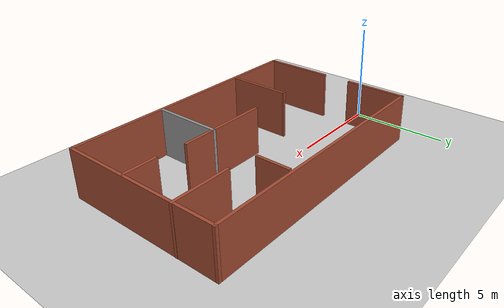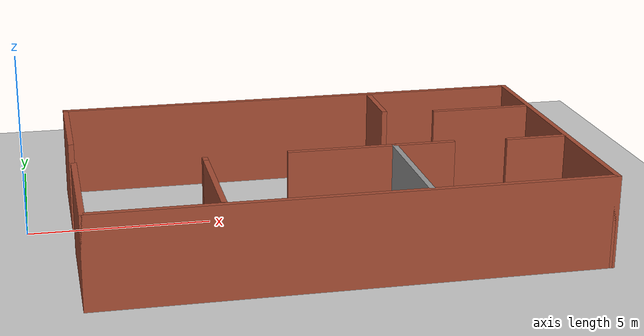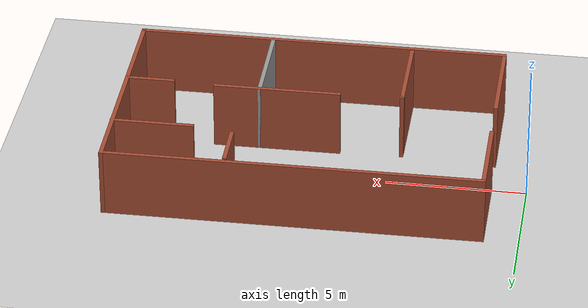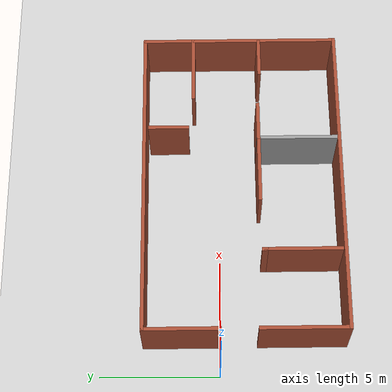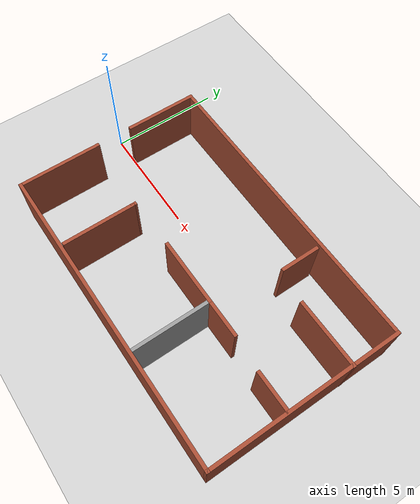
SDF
<sdf version="1.6">
 <world name="default">
  <light name="sun" type="directional">
   <pose>0 0 10 0 -0 0</pose>
   <diffuse>0.8 0.8 0.8 1</diffuse>
   <specular>0.2 0.2 0.2 1</specular>
   <attenuation>
    <range>1000</range>
    <constant>0.9</constant>
    <linear>0.01</linear>
    <quadratic>0.001</quadratic>
   </attenuation>
   <direction>-0.5 0.1 -0.9</direction>
  </light>
  <model name="ground_plane">
   <static>1</static>
   <link name="link">
    <collision name="collision">
     <geometry><plane><normal>0 0 1</normal><size>100 100</size></plane></geometry>
     <surface>
      <contact><collide_bitmask>65535</collide_bitmask></contact>
      <friction><ode><mu>100</mu><mu2>50</mu2></ode></friction>
     </surface>
    </collision>
    <visual name="visual">
     <cast_shadows>0</cast_shadows>
     <geometry><plane><normal>0 0 1</normal><size>100 100</size></plane></geometry>
     <material>
      <script><uri>file://media/materials/scripts/gazebo.material</uri><name>Gazebo/Grey</name></script>
     </material>
    </visual>
   </link>
  </model>
  <gravity>0 0 -9.8</gravity>
  <magnetic_field>6e-06 2.3e-05 -4.2e-05</magnetic_field>
  <atmosphere type="adiabatic"/>
  <physics name="default_physics" default="0" type="ode">
   <max_step_size>0.001</max_step_size>
   <real_time_factor>1</real_time_factor>
   <real_time_update_rate>1000</real_time_update_rate>
  </physics>
  <scene><ambient>0.4 0.4 0.4 1</ambient><background>0.7 0.7 0.7 1</background><shadows>1</shadows></scene>
  <audio><device>default</device></audio>
  <spherical_coordinates>
   <surface_model>EARTH_WGS84</surface_model>
   <latitude_deg>0</latitude_deg>
   <longitude_deg>0</longitude_deg>
   <elevation>0</elevation>
   <heading_deg>0</heading_deg>
  </spherical_coordinates>
  <model name="const">
   <pose>7.9931 -0.984162 0 0 0 -3.13521</pose>
   <link name="Wall_0">
    <collision name="Wall_0_Collision">
     <geometry><box><size>8.5 0.15 2.5</size></box></geometry>
     <pose>0 0 1.25 0 -0 0</pose>
    </collision>
    <visual name="Wall_0_Visual">
     <pose>0 0 1.25 0 -0 0</pose>
     <geometry><box><size>8.5 0.15 2.5</size></box></geometry>
     <material>
      <script><uri>file://media/materials/scripts/gazebo.material</uri><name>Gazebo/Bricks</name></script>
      <ambient>1 1 1 1</ambient>
     </material>
     <meta><layer>0</layer></meta>
    </visual>
    <pose>-6.66865 0 0 0 -0 1.5708</pose>
   </link>
   <link name="Wall_1">
    <collision name="Wall_1_Collision">
     <geometry><box><size>13.5 0.15 2.5</size></box></geometry>
     <pose>0 0 1.25 0 -0 0</pose>
    </collision>
    <visual name="Wall_1_Visual">
     <pose>0 0 1.25 0 -0 0</pose>
     <geometry><box><size>13.5 0.15 2.5</size></box></geometry>
     <material>
      <script><uri>file://media/materials/scripts/gazebo.material</uri><name>Gazebo/Bricks</name></script>
      <ambient>1 1 1 1</ambient>
     </material>
     <meta><layer>0</layer></meta>
    </visual>
    <pose>0.006349 4.175 0 0 -0 0</pose>
   </link>
   <link name="Wall_10">
    <collision name="Wall_10_Collision">
     <geometry><box><size>3 0.15 2.5</size></box></geometry>
     <pose>0 0 1.25 0 -0 0</pose>
    </collision>
    <visual name="Wall_10_Visual">
     <pose>0 0 1.25 0 -0 0</pose>
     <geometry><box><size>3 0.15 2.5</size></box></geometry>
     <material>
      <script><uri>file://media/materials/scripts/gazebo.material</uri><name>Gazebo/Bricks</name></script>
      <ambient>1 1 1 1</ambient>
     </material>
     <meta><layer>0</layer></meta>
    </visual>
    <pose>-0.40168 0.717775 0 0 -0 0</pose>
   </link>
   <link name="Wall_12">
    <collision name="Wall_12_Collision">
     <geometry><box><size>3.25 0.15 2.5</size></box></geometry>
     <pose>0 0 1.25 0 -0 0</pose>
    </collision>
    <visual name="Wall_12_Visual">
     <pose>0 0 1.25 0 -0 0</pose>
     <geometry><box><size>3.25 0.15 2.5</size></box></geometry>
     <material>
      <script><uri>file://media/materials/scripts/gazebo.material</uri><name>Gazebo/Bricks</name></script>
      <ambient>1 1 1 1</ambient>
     </material>
     <meta><layer>0</layer></meta>
    </visual>
    <pose>3.30942 2.44742 0 0 -0 -1.5708</pose>
   </link>
   <link name="Wall_13">
    <collision name="Wall_13_Collision">
     <geometry><box><size>0.25 0.15 2.5</size></box></geometry>
     <pose>0 0 1.25 0 -0 0</pose>
    </collision>
    <visual name="Wall_13_Visual">
     <pose>0 0 1.25 0 -0 0</pose>
     <geometry><box><size>0.25 0.15 2.5</size></box></geometry>
     <material>
      <script><uri>file://media/materials/scripts/gazebo.material</uri><name>Gazebo/Bricks</name></script>
      <ambient>1 1 1 1</ambient>
     </material>
     <meta><layer>0</layer></meta>
    </visual>
    <pose>3.30942 0.847417 0 0 -0 -1.5708</pose>
   </link>
   <link name="Wall_15">
    <collision name="Wall_15_Collision">
     <geometry><box><size>1.75 0.15 2.5</size></box></geometry>
     <pose>0 0 1.25 0 -0 0</pose>
    </collision>
    <visual name="Wall_15_Visual">
     <pose>0 0 1.25 0 -0 0</pose>
     <geometry><box><size>1.75 0.15 2.5</size></box></geometry>
     <material>
      <script><uri>file://media/materials/scripts/gazebo.material</uri><name>Gazebo/Bricks</name></script>
      <ambient>1 1 1 1</ambient>
     </material>
     <meta><layer>0</layer></meta>
    </visual>
    <pose>-2.35436 -3.13476 0 0 -0 -1.5708</pose>
   </link>
   <link name="Wall_17">
    <collision name="Wall_17_Collision">
     <geometry><box><size>3 0.15 2.5</size></box></geometry>
     <pose>0 0 1.25 0 -0 0</pose>
    </collision>
    <visual name="Wall_17_Visual">
     <pose>0 0 1.25 0 -0 0</pose>
     <geometry><box><size>3 0.15 2.5</size></box></geometry>
     <material>
      <script><uri>file://media/materials/scripts/gazebo.material</uri><name>Gazebo/Bricks</name></script>
      <ambient>1 1 1 1</ambient>
     </material>
     <meta><layer>0</layer></meta>
    </visual>
    <pose>-5.25635 -2.05333 0 0 -0 0</pose>
   </link>
   <link name="Wall_19">
    <collision name="Wall_19_Collision">
     <geometry><box><size>3.75 0.15 2.5</size></box></geometry>
     <pose>0 0 1.25 0 -0 0</pose>
    </collision>
    <visual name="Wall_19_Visual">
     <pose>0 0 1.25 0 -0 0</pose>
     <geometry><box><size>3.75 0.15 2.5</size></box></geometry>
     <material>
      <script><uri>file://media/materials/scripts/gazebo.material</uri><name>Gazebo/Bricks</name></script>
      <ambient>1 1 1 1</ambient>
     </material>
     <meta><layer>0</layer></meta>
    </visual>
    <pose>6.68135 2.375 0 0 -0 -1.5708</pose>
   </link>
   <link name="Wall_22">
    <collision name="Wall_22_Collision">
     <geometry><box><size>3.25 0.15 2.5</size></box></geometry>
     <pose>0 0 1.25 0 -0 0</pose>
    </collision>
    <visual name="Wall_22_Visual">
     <pose>0 0 1.25 0 -0 0</pose>
     <geometry><box><size>3.25 0.15 2.5</size></box></geometry>
     <material>
      <script><uri>file://media/materials/scripts/gazebo.material</uri><name>Gazebo/Bricks</name></script>
      <ambient>1 1 1 1</ambient>
     </material>
     <meta><layer>0</layer></meta>
    </visual>
    <pose>6.68135 -2.625 0 0 -0 1.5708</pose>
   </link>
   <link name="Wall_3">
    <collision name="Wall_3_Collision">
     <geometry><box><size>13.5 0.15 2.5</size></box></geometry>
     <pose>0 0 1.25 0 -0 0</pose>
    </collision>
    <visual name="Wall_3_Visual">
     <pose>0 0 1.25 0 -0 0</pose>
     <geometry><box><size>13.5 0.15 2.5</size></box></geometry>
     <material>
      <script><uri>file://media/materials/scripts/gazebo.material</uri><name>Gazebo/Bricks</name></script>
      <ambient>1 1 1 1</ambient>
     </material>
     <meta><layer>0</layer></meta>
    </visual>
    <pose>0.006349 -4.175 0 0 -0 3.14159</pose>
   </link>
   <link name="Wall_5">
    <collision name="Wall_5_Collision">
     <geometry><box><size>3.5 0.15 2.5</size></box></geometry>
     <pose>0 0 1.25 0 -0 0</pose>
    </collision>
    <visual name="Wall_5_Visual">
     <pose>0 0 1.25 0 -0 0</pose>
     <geometry><box><size>3.5 0.15 2.5</size></box></geometry>
     <material>
      <script><uri>file://media/materials/scripts/gazebo.material</uri><name>Gazebo/Grey</name></script>
      <ambient>1 1 1 1</ambient>
     </material>
     <meta><layer>0</layer></meta>
    </visual>
    <pose>-1.82668 2.39277 0 0 -0 -1.5708</pose>
   </link>
   <link name="Wall_6">
    <collision name="Wall_6_Collision">
     <geometry><box><size>1.75 0.15 2.5</size></box></geometry>
     <pose>0 0 1.25 0 -0 0</pose>
    </collision>
    <visual name="Wall_6_Visual">
     <pose>0 0 1.25 0 -0 0</pose>
     <geometry><box><size>1.75 0.15 2.5</size></box></geometry>
     <material>
      <script><uri>file://media/materials/scripts/gazebo.material</uri><name>Gazebo/Bricks</name></script>
      <ambient>1 1 1 1</ambient>
     </material>
     <meta><layer>0</layer></meta>
    </visual>
    <pose>-2.62668 0.717775 0 0 -0 3.14159</pose>
   </link>
   <link name="Wall_8">
    <collision name="Wall_8_Collision">
     <geometry><box><size>1.75 0.15 2.5</size></box></geometry>
     <pose>0 0 1.25 0 -0 0</pose>
    </collision>
    <visual name="Wall_8_Visual">
     <pose>0 0 1.25 0 -0 0</pose>
     <geometry><box><size>1.75 0.15 2.5</size></box></geometry>
     <material>
      <script><uri>file://media/materials/scripts/gazebo.material</uri><name>Gazebo/Bricks</name></script>
      <ambient>1 1 1 1</ambient>
     </material>
     <meta><layer>0</layer></meta>
    </visual>
    <pose>-5.81099 0.831329 0 0 -0 0</pose>
   </link>
   <static>1</static>
  </model>
 </world>
</sdf>
